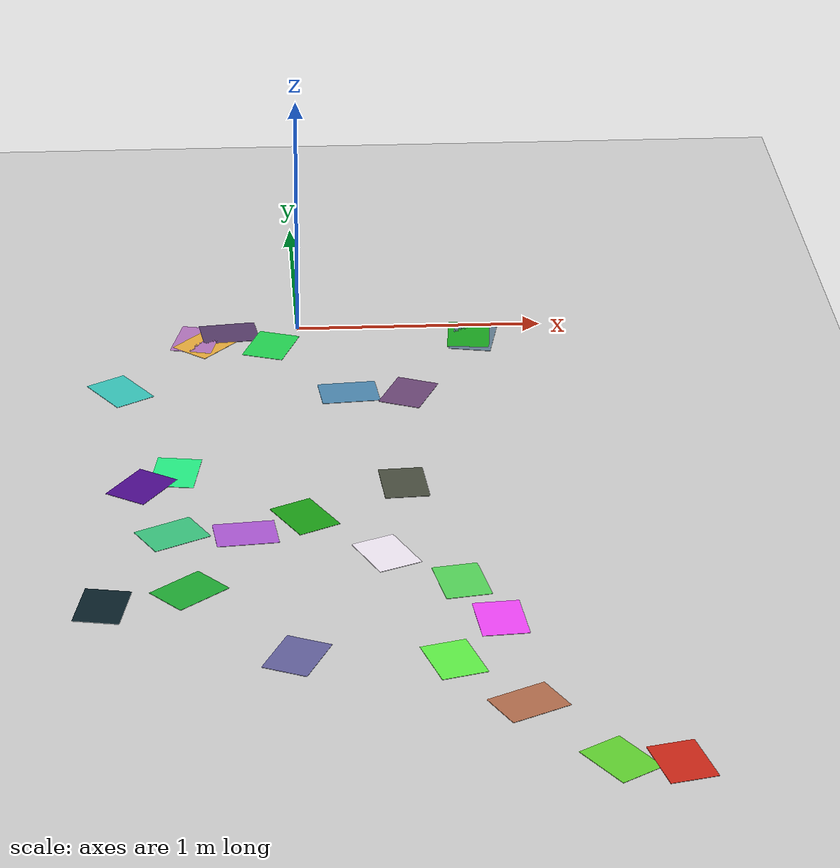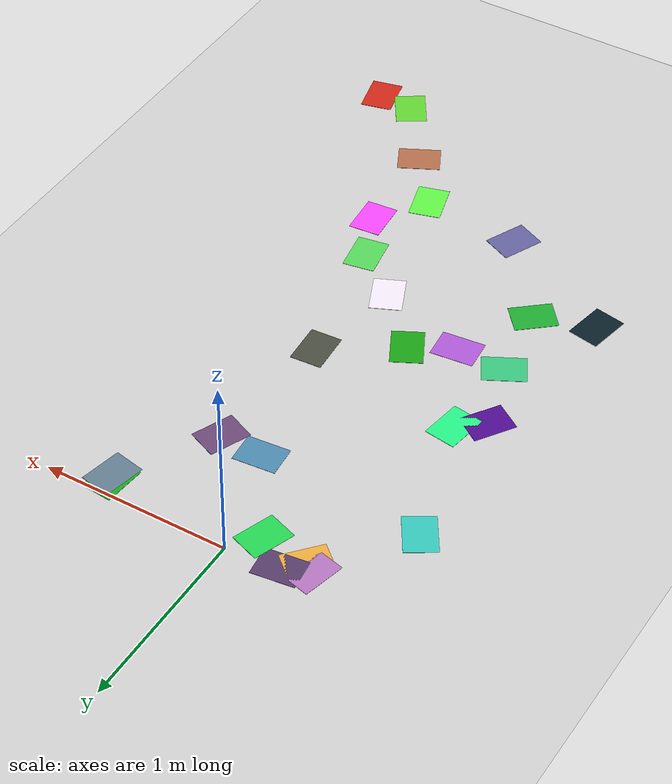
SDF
<sdf version="1.9">
 <world name="default">
  <model name="ground_plane">
   <static>true</static>
   <link name="link">
    <collision name="collision">
     <geometry><plane><normal>0 0 1</normal><size>1 1</size></plane></geometry>
    </collision>
    <visual name="visual">
     <geometry><plane><normal>0 0 1</normal><size>500 500</size></plane></geometry>
     <material>
      <ambient>0.8 0.8 0.8 1</ambient>
      <diffuse>0.8 0.8 0.8 1</diffuse>
      <specular>0.8 0.8 0.8 1</specular>
     </material>
    </visual>
    <inertial>
     <mass>1</mass>
     <inertia><ixx>1</ixx><ixy>0</ixy><ixz>0</ixz><iyy>1</iyy><iyz>0</iyz><izz>1</izz></inertia>
    </inertial>
   </link>
  </model>
  <model name="vio_floor_patch_6">
   <static>true</static>
   <pose>-0.11320517056787971 -0.15443696190958445 .002 0 0 2.7964072568570644</pose>
   <link name="patch">
    <visual name="patch">
     <geometry><box><size>.17 .23 .002</size></box></geometry>
     <material>
      <ambient>0.1338930356311719 0.824712063767748 0.31594427759731514 1</ambient>
      <diffuse>0.1338930356311719 0.824712063767748 0.31594427759731514 1</diffuse>
     </material>
    </visual>
   </link>
  </model>
  <model name="vio_floor_patch_10">
   <static>true</static>
   <pose>-0.7217676849954571 -0.5437625326592306 .002 0 0 0.5641320625798718</pose>
   <link name="patch">
    <visual name="patch">
     <geometry><box><size>.17 .23 .002</size></box></geometry>
     <material>
      <ambient>0.21037082547630873 0.7658786216443089 0.7200609083133135 1</ambient>
      <diffuse>0.21037082547630873 0.7658786216443089 0.7200609083133135 1</diffuse>
     </material>
    </visual>
   </link>
  </model>
  <model name="vio_floor_patch_11">
   <static>true</static>
   <pose>-0.504420351053984 -1.2465836155366423 .002 0 0 2.9901375089723827</pose>
   <link name="patch">
    <visual name="patch">
     <geometry><box><size>.17 .23 .002</size></box></geometry>
     <material>
      <ambient>0.1379133469097456 0.9372216347881561 0.5149199074936275 1</ambient>
      <diffuse>0.1379133469097456 0.9372216347881561 0.5149199074936275 1</diffuse>
     </material>
    </visual>
   </link>
  </model>
  <model name="vio_floor_patch_14">
   <static>true</static>
   <pose>0.716106638599423 -0.12303753430279496 .002 0 0 2.9396854399803707</pose>
   <link name="patch">
    <visual name="patch">
     <geometry><box><size>.17 .23 .002</size></box></geometry>
     <material>
      <ambient>0.3825291857993843 0.48465840503979013 0.5613069612243283 1</ambient>
      <diffuse>0.3825291857993843 0.48465840503979013 0.5613069612243283 1</diffuse>
     </material>
    </visual>
   </link>
  </model>
  <model name="vio_floor_patch_21">
   <static>true</static>
   <pose>0.6338743146568868 -2.399612921842353 .002 0 0 -3.059265265226071</pose>
   <link name="patch">
    <visual name="patch">
     <geometry><box><size>.17 .23 .002</size></box></geometry>
     <material>
      <ambient>0.9468477300690489 0.27351656765709026 0.9739581102135466 1</ambient>
      <diffuse>0.9468477300690489 0.27351656765709026 0.9739581102135466 1</diffuse>
     </material>
    </visual>
   </link>
  </model>
  <model name="vio_floor_patch_27">
   <static>true</static>
   <pose>-0.3730648326768774 -0.12242674284594379 .002 0 0 -0.7136439676433208</pose>
   <link name="patch">
    <visual name="patch">
     <geometry><box><size>.17 .23 .002</size></box></geometry>
     <material>
      <ambient>0.9007432456081247 0.6642168073508647 0.2303811947531325 1</ambient>
      <diffuse>0.9007432456081247 0.6642168073508647 0.2303811947531325 1</diffuse>
     </material>
    </visual>
   </link>
  </model>
  <model name="vio_floor_patch_40">
   <static>true</static>
   <pose>0.2594940175824638 -1.9121300487496642 .002 0 0 -2.72308795469556</pose>
   <link name="patch">
    <visual name="patch">
     <geometry><box><size>.17 .23 .002</size></box></geometry>
     <material>
      <ambient>0.9401190487670167 0.9080500341998464 0.9575902624983808 1</ambient>
      <diffuse>0.9401190487670167 0.9080500341998464 0.9575902624983808 1</diffuse>
     </material>
    </visual>
   </link>
  </model>
  <model name="vio_floor_patch_42">
   <static>true</static>
   <pose>-0.02684427140417045 -1.6192999201348837 .002 0 0 0.4796790086731</pose>
   <link name="patch">
    <visual name="patch">
     <geometry><box><size>.17 .23 .002</size></box></geometry>
     <material>
      <ambient>0.10508136955735506 0.6209358379738258 0.0854437198678411 1</ambient>
      <diffuse>0.10508136955735506 0.6209358379738258 0.0854437198678411 1</diffuse>
     </material>
    </visual>
   </link>
  </model>
  <model name="vio_floor_patch_46">
   <static>true</static>
   <pose>-0.08965547375000094 -2.619917892372605 .002 0 0 2.7144002508879894</pose>
   <link name="patch">
    <visual name="patch">
     <geometry><box><size>.17 .23 .002</size></box></geometry>
     <material>
      <ambient>0.38645791173754224 0.3780603021060074 0.6076848250412829 1</ambient>
      <diffuse>0.38645791173754224 0.3780603021060074 0.6076848250412829 1</diffuse>
     </material>
    </visual>
   </link>
  </model>
  <model name="vio_floor_patch_47">
   <static>true</static>
   <pose>-0.24869535793018904 -1.7391683375468272 .002 0 0 -1.4719000832633267</pose>
   <link name="patch">
    <visual name="patch">
     <geometry><box><size>.17 .23 .002</size></box></geometry>
     <material>
      <ambient>0.6727690095836921 0.34413234094258666 0.8225490776576927 1</ambient>
      <diffuse>0.6727690095836921 0.34413234094258666 0.8225490776576927 1</diffuse>
     </material>
    </visual>
   </link>
  </model>
  <model name="vio_floor_patch_52">
   <static>true</static>
   <pose>0.42097154687863836 -0.6123316451829552 .002 0 0 2.736500423769971</pose>
   <link name="patch">
    <visual name="patch">
     <geometry><box><size>.17 .23 .002</size></box></geometry>
     <material>
      <ambient>0.4158913675824714 0.2746095242420028 0.4593082331483074 1</ambient>
      <diffuse>0.4158913675824714 0.2746095242420028 0.4593082331483074 1</diffuse>
     </material>
    </visual>
   </link>
  </model>
  <model name="vio_floor_patch_55">
   <static>true</static>
   <pose>0.700177878623667 -0.09406316744935772 .002 0 0 3.043782783765995</pose>
   <link name="patch">
    <visual name="patch">
     <geometry><box><size>.17 .23 .002</size></box></geometry>
     <material>
      <ambient>0.10148981293535808 0.6404118555012132 0.12195372044445929 1</ambient>
      <diffuse>0.10148981293535808 0.6404118555012132 0.12195372044445929 1</diffuse>
     </material>
    </visual>
   </link>
  </model>
  <model name="vio_floor_patch_64">
   <static>true</static>
   <pose>0.6796239551642962 -2.9640789706628636 .002 0 0 -1.1015728890271608</pose>
   <link name="patch">
    <visual name="patch">
     <geometry><box><size>.17 .23 .002</size></box></geometry>
     <material>
      <ambient>0.6951610444168798 0.4245256719431067 0.294958159416442 1</ambient>
      <diffuse>0.6951610444168798 0.4245256719431067 0.294958159416442 1</diffuse>
     </material>
    </visual>
   </link>
  </model>
  <model name="vio_floor_patch_67">
   <static>true</static>
   <pose>0.5172994708839409 -2.1283899812318348 .002 0 0 0.1669993827898626</pose>
   <link name="patch">
    <visual name="patch">
     <geometry><box><size>.17 .23 .002</size></box></geometry>
     <material>
      <ambient>0.33132153176588713 0.828678353476465 0.34586314449014277 1</ambient>
      <diffuse>0.33132153176588713 0.828678353476465 0.34586314449014277 1</diffuse>
     </material>
    </visual>
   </link>
  </model>
  <model name="vio_floor_patch_71">
   <static>true</static>
   <pose>0.35569055819795636 -1.3728962409015226 .002 0 0 -3.0763102467055243</pose>
   <link name="patch">
    <visual name="patch">
     <geometry><box><size>.17 .23 .002</size></box></geometry>
     <material>
      <ambient>0.28128526880033927 0.30046062905160525 0.2432530683788816 1</ambient>
      <diffuse>0.28128526880033927 0.30046062905160525 0.2432530683788816 1</diffuse>
     </material>
    </visual>
   </link>
  </model>
  <model name="vio_floor_patch_75">
   <static>true</static>
   <pose>0.4490165270281876 -2.6711049560373734 .002 0 0 -2.866800286318015</pose>
   <link name="patch">
    <visual name="patch">
     <geometry><box><size>.17 .23 .002</size></box></geometry>
     <material>
      <ambient>0.37091941684801333 0.9413969389353116 0.27126796793246916 1</ambient>
      <diffuse>0.37091941684801333 0.9413969389353116 0.27126796793246916 1</diffuse>
     </material>
    </visual>
   </link>
  </model>
  <model name="vio_floor_patch_79">
   <static>true</static>
   <pose>-0.5172641845454704 -1.7298733186937243 .002 0 0 2.0582050795437996</pose>
   <link name="patch">
    <visual name="patch">
     <geometry><box><size>.17 .23 .002</size></box></geometry>
     <material>
      <ambient>0.2202535963200699 0.7596628775786677 0.488580425549836 1</ambient>
      <diffuse>0.2202535963200699 0.7596628775786677 0.488580425549836 1</diffuse>
     </material>
    </visual>
   </link>
  </model>
  <model name="vio_floor_patch_102">
   <static>true</static>
   <pose>-0.41524531299279327 -0.08580171336121456 .002 0 0 2.9045058656744325</pose>
   <link name="patch">
    <visual name="patch">
     <geometry><box><size>.17 .23 .002</size></box></geometry>
     <material>
      <ambient>0.6931578976435899 0.44879966202596744 0.731652344593175 1</ambient>
      <diffuse>0.6931578976435899 0.44879966202596744 0.731652344593175 1</diffuse>
     </material>
    </visual>
   </link>
  </model>
  <model name="vio_floor_patch_107">
   <static>true</static>
   <pose>0.18388232390859738 -0.5993397484855363 .002 0 0 1.6592602160551437</pose>
   <link name="patch">
    <visual name="patch">
     <geometry><box><size>.17 .23 .002</size></box></geometry>
     <material>
      <ambient>0.2983431855889458 0.5278714385658239 0.6777936784408278 1</ambient>
      <diffuse>0.2983431855889458 0.5278714385658239 0.6777936784408278 1</diffuse>
     </material>
    </visual>
   </link>
  </model>
  <model name="vio_floor_patch_113">
   <static>true</static>
   <pose>1.1472646682373215 -3.35556659777113 .002 0 0 -2.9108366914091657</pose>
   <link name="patch">
    <visual name="patch">
     <geometry><box><size>.17 .23 .002</size></box></geometry>
     <material>
      <ambient>0.7946471366316392 0.15224207887683497 0.08893704818214122 1</ambient>
      <diffuse>0.7946471366316392 0.15224207887683497 0.08893704818214122 1</diffuse>
     </material>
    </visual>
   </link>
  </model>
  <model name="vio_floor_patch_116">
   <static>true</static>
   <pose>-0.7663438993891019 -2.2442133333317082 .002 0 0 2.9542614661276807</pose>
   <link name="patch">
    <visual name="patch">
     <geometry><box><size>.17 .23 .002</size></box></geometry>
     <material>
      <ambient>0.03559520901116084 0.12291021356600489 0.15643934470868753 1</ambient>
      <diffuse>0.03559520901116084 0.12291021356600489 0.15643934470868753 1</diffuse>
     </material>
    </visual>
   </link>
  </model>
  <model name="vio_floor_patch_123">
   <static>true</static>
   <pose>-0.6318819862022169 -1.3529920475405195 .002 0 0 2.5544932430191873</pose>
   <link name="patch">
    <visual name="patch">
     <geometry><box><size>.17 .23 .002</size></box></geometry>
     <material>
      <ambient>0.30116809269394834 0.04501668873313619 0.5558227474925518 1</ambient>
      <diffuse>0.30116809269394834 0.04501668873313619 0.5558227474925518 1</diffuse>
     </material>
    </visual>
   </link>
  </model>
  <model name="vio_floor_patch_128">
   <static>true</static>
   <pose>0.9478225560655464 -3.332503345874801 .002 0 0 0.5675478371158791</pose>
   <link name="patch">
    <visual name="patch">
     <geometry><box><size>.17 .23 .002</size></box></geometry>
     <material>
      <ambient>0.37722291576752026 0.819231478954615 0.18541900131627267 1</ambient>
      <diffuse>0.37722291576752026 0.819231478954615 0.18541900131627267 1</diffuse>
     </material>
    </visual>
   </link>
  </model>
  <model name="vio_floor_patch_134">
   <static>true</static>
   <pose>-0.45733008432662803 -2.1482616260199636 .002 0 0 -0.8628749580675379</pose>
   <link name="patch">
    <visual name="patch">
     <geometry><box><size>.17 .23 .002</size></box></geometry>
     <material>
      <ambient>0.1213242799278115 0.6592211410785489 0.19823422684138683 1</ambient>
      <diffuse>0.1213242799278115 0.6592211410785489 0.19823422684138683 1</diffuse>
     </material>
    </visual>
   </link>
  </model>
  <model name="vio_floor_patch_135">
   <static>true</static>
   <pose>-0.2813626766556583 -0.030105372175824208 .002 0 0 1.694666787056533</pose>
   <link name="patch">
    <visual name="patch">
     <geometry><box><size>.17 .23 .002</size></box></geometry>
     <material>
      <ambient>0.33353650647853356 0.23347235044218528 0.40987782662210004 1</ambient>
      <diffuse>0.33353650647853356 0.23347235044218528 0.40987782662210004 1</diffuse>
     </material>
    </visual>
   </link>
  </model>
 </world>
</sdf>
